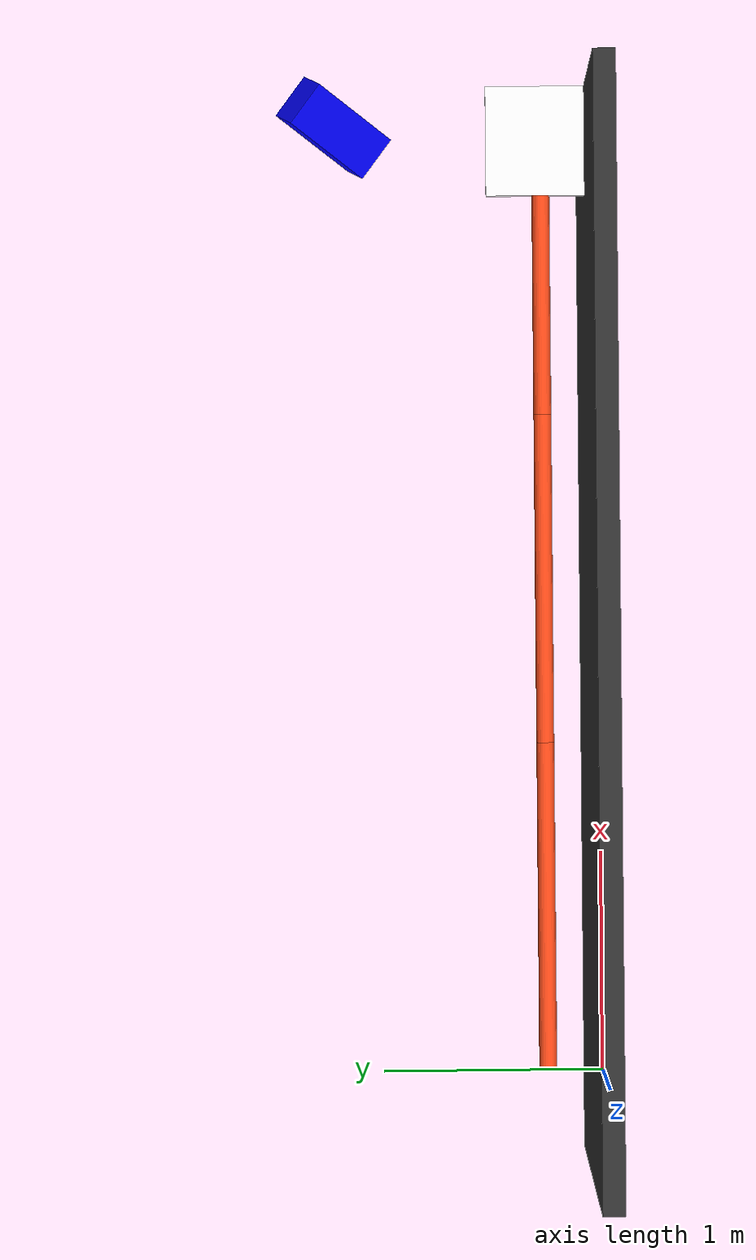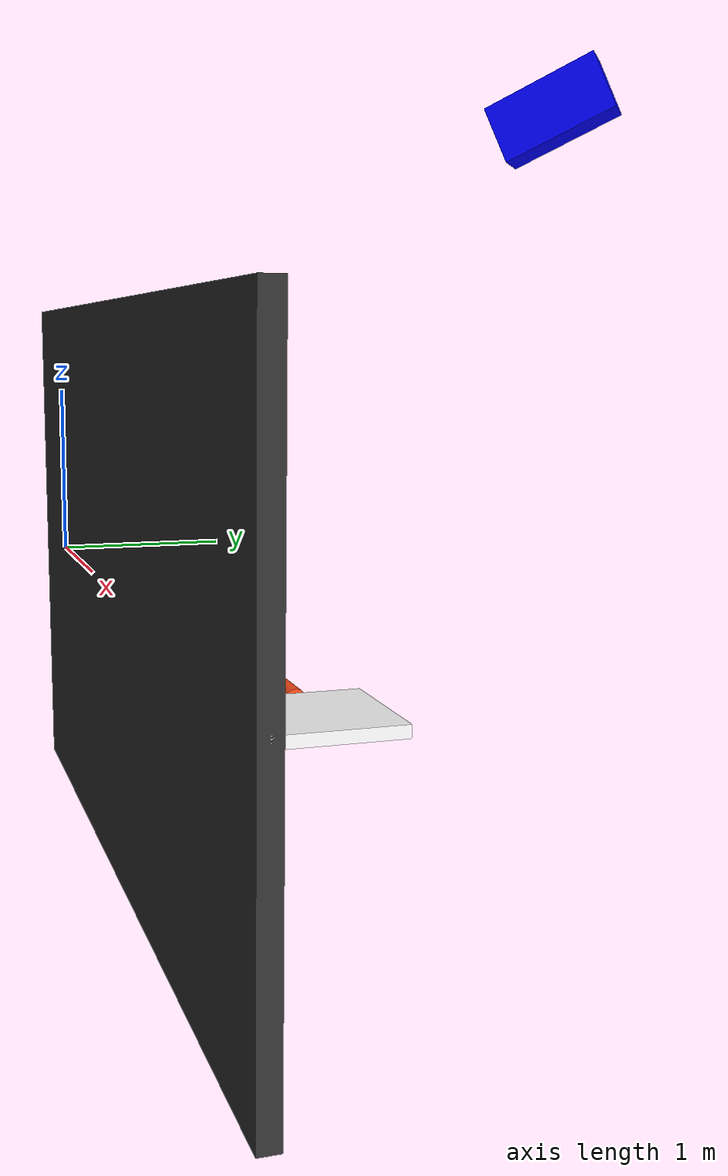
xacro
<?xml version="1.0"?>
<robot xmlns:xacro="http://www.ros.org/wiki/xacro" name="robot">

<!-- Materials -->
<material name="grey"><color rgba="0.2 0.2 0.2 1"/></material>
<material name="white"><color rgba="1 1 1 1"/></material>
<material name="orange"><color rgba="1 0.3 0.1 1"/></material>
<material name="blue"><color rgba="0 0 1 1"/></material>

<!-- WORLD FRAME (ROOT) -->
<link name="world"/>

<!-- Joint: world to base_link -->
<joint name="world_to_base" type="fixed">
  <parent link="world"/>
  <child link="base_link"/>
  <origin xyz="0 0 0" rpy="0 0 0"/>
</joint>

<!-- BASE LINK -->
<link name="base_link">
  <visual>
    <origin xyz="2 0 0"/>
    <geometry><box size="5 0.1 3"/></geometry>
    <material name="grey"/>
  </visual>
</link>

<!-- ARM LINK 3 -->
<joint name="base_to_l3" type="revolute">
  <parent link="base_link"/>
  <child link="l3"/>
  <origin xyz="0 0.25 0"/>
  <axis xyz="0 1 0"/>
  <limit lower="-3.1" upper="3.1" effort="0.1" velocity="0.2"/>
</joint>

<link name="l3">
  <visual>
    <origin xyz="0.75 0 0" rpy="0 1.57 0"/>
    <geometry><cylinder length="1.5" radius="0.04"/></geometry>
    <material name="orange"/>
  </visual>
</link>

<!-- ARM LINK 2 -->
<joint name="l3_to_l2" type="revolute">
  <parent link="l3"/>
  <child link="l2"/>
  <origin xyz="1.5 0 0"/>
  <axis xyz="0 0 1"/>
  <limit lower="-3.1" upper="3.1" effort="0.1" velocity="0.2"/>
</joint>

<link name="l2">
  <visual>
    <origin xyz="0.75 0 0" rpy="0 1.57 0"/>
    <geometry><cylinder length="1.5" radius="0.04"/></geometry>
    <material name="orange"/>
  </visual>
</link>

<!-- ARM LINK 1 -->
<joint name="l2_to_l1" type="revolute">
  <parent link="l2"/>
  <child link="l1"/>
  <origin xyz="1.5 0 0"/>
  <axis xyz="0 0 1"/>
  <limit lower="-3.1" upper="3.1" effort="0.1" velocity="0.2"/>
</joint>

<link name="l1">
  <visual>
    <origin xyz="0.5 0 0" rpy="0 1.57 0"/>
    <geometry><cylinder length="1.0" radius="0.04"/></geometry>
    <material name="orange"/>
  </visual>
</link>

<!-- GRIPPER -->
<joint name="l1_to_grip" type="revolute">
  <parent link="l1"/>
  <child link="grip"/>
  <origin xyz="1 0 0"/>
  <axis xyz="0 0 1"/>
  <limit lower="-3.1" upper="3.1" effort="0.1" velocity="0.2"/>
</joint>

<link name="grip">
  <visual>
    <origin xyz="0.25 0 0"/>
    <geometry><box size="0.5 0.5 0.05"/></geometry>
    <material name="white"/>
  </visual>
</link>

<!-- CAMERA -->
<joint name="base_to_camera" type="fixed">
  <parent link="base_link"/>
  <child link="camera_link"/>
  <origin xyz="4 1 2" rpy="-2 0 2.5"/>
</joint>

<link name="camera_link">
  <visual>
    <origin xyz="0 0 -0.2"/>
    <geometry><box size="0.2 0.2 0.4"/></geometry>
    <material name="blue"/>
  </visual>
</link>

</robot>
